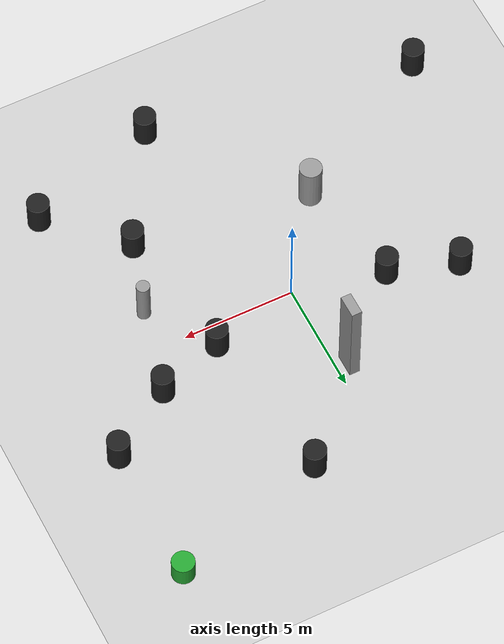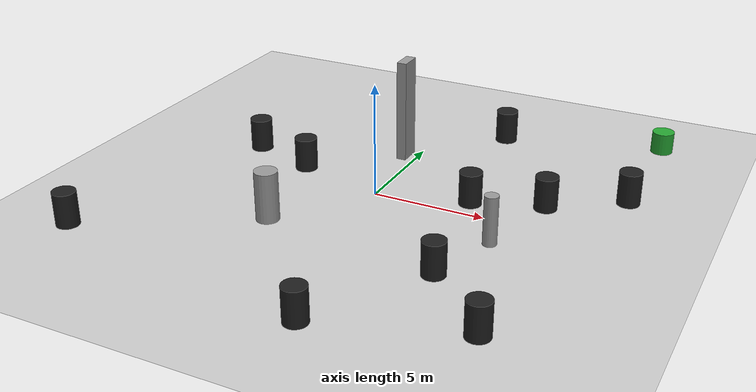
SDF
<sdf version="1.6">
 <world name="default">
  <light name="sun" type="directional">
   <pose>0 0 10 0 -0 0</pose>
   <diffuse>0.8 0.8 0.8 1</diffuse>
   <specular>0.2 0.2 0.2 1</specular>
   <attenuation>
    <range>1000</range>
    <constant>0.9</constant>
    <linear>0.01</linear>
    <quadratic>0.001</quadratic>
   </attenuation>
   <direction>-0.5 0.1 -0.9</direction>
  </light>
  <model name="ground_plane">
   <static>1</static>
   <link name="link">
    <collision name="collision">
     <geometry><plane><normal>0 0 1</normal><size>100 100</size></plane></geometry>
     <surface>
      <contact><collide_bitmask>65535</collide_bitmask></contact>
      <friction><ode><mu>100</mu><mu2>50</mu2></ode></friction>
     </surface>
    </collision>
    <visual name="visual">
     <cast_shadows>0</cast_shadows>
     <geometry><plane><normal>0 0 1</normal><size>100 100</size></plane></geometry>
     <material>
      <script><uri>file://media/materials/scripts/gazebo.material</uri><name>Gazebo/Grey</name></script>
     </material>
    </visual>
   </link>
  </model>
  <physics name="default_physics" default="0" type="ode">
   <max_step_size>0.01</max_step_size>
   <real_time_factor>1</real_time_factor>
   <real_time_update_rate>1000</real_time_update_rate>
  </physics>
  <model name="obs0">
   <pose>4 1 0.74912 0 -0 0</pose>
   <link name="link">
    <inertial>
     <mass>1</mass>
     <inertia><ixx>1</ixx><ixy>0</ixy><ixz>0</ixz><iyy>1</iyy><iyz>0</iyz><izz>1</izz></inertia>
    </inertial>
    <collision name="collision">
     <geometry><cylinder><radius>0.5</radius><length>1.5</length></cylinder></geometry>
    </collision>
    <visual name="visual">
     <geometry><cylinder><radius>0.5</radius><length>1.5</length></cylinder></geometry>
     <material>
      <script><uri>file://media/materials/scripts/gazebo.material</uri><name>Gazebo/Black</name></script>
     </material>
    </visual>
    <velocity_decay><linear>0</linear><angular>0</angular></velocity_decay>
   </link>
   <static>0</static>
  </model>
  <model name="obs1">
   <pose>-4 1 0.74912 0 -0 0</pose>
   <link name="link">
    <inertial>
     <mass>1</mass>
     <inertia><ixx>1</ixx><ixy>0</ixy><ixz>0</ixz><iyy>1</iyy><iyz>0</iyz><izz>1</izz></inertia>
    </inertial>
    <collision name="collision">
     <geometry><cylinder><radius>0.5</radius><length>1.5</length></cylinder></geometry>
    </collision>
    <visual name="visual">
     <geometry><cylinder><radius>0.5</radius><length>1.5</length></cylinder></geometry>
     <material>
      <script><uri>file://media/materials/scripts/gazebo.material</uri><name>Gazebo/Black</name></script>
     </material>
    </visual>
    <velocity_decay><linear>0</linear><angular>0</angular></velocity_decay>
   </link>
   <static>0</static>
  </model>
  <model name="obs2">
   <pose>-10 -8 0.74912 0 -0 0</pose>
   <link name="link">
    <inertial>
     <mass>1</mass>
     <inertia><ixx>1</ixx><ixy>0</ixy><ixz>0</ixz><iyy>1</iyy><iyz>0</iyz><izz>1</izz></inertia>
    </inertial>
    <collision name="collision">
     <geometry><cylinder><radius>0.5</radius><length>1.5</length></cylinder></geometry>
    </collision>
    <visual name="visual">
     <geometry><cylinder><radius>0.5</radius><length>1.5</length></cylinder></geometry>
     <material>
      <script><uri>file://media/materials/scripts/gazebo.material</uri><name>Gazebo/Black</name></script>
     </material>
    </visual>
    <velocity_decay><linear>0</linear><angular>0</angular></velocity_decay>
   </link>
   <static>0</static>
  </model>
  <model name="obs3">
   <pose>10 4 0.74912 0 -0 0</pose>
   <link name="link">
    <inertial>
     <mass>1</mass>
     <inertia><ixx>1</ixx><ixy>0</ixy><ixz>0</ixz><iyy>1</iyy><iyz>0</iyz><izz>1</izz></inertia>
    </inertial>
    <collision name="collision">
     <geometry><cylinder><radius>0.5</radius><length>1.5</length></cylinder></geometry>
    </collision>
    <visual name="visual">
     <geometry><cylinder><radius>0.5</radius><length>1.5</length></cylinder></geometry>
     <material>
      <script><uri>file://media/materials/scripts/gazebo.material</uri><name>Gazebo/Black</name></script>
     </material>
    </visual>
    <velocity_decay><linear>0</linear><angular>0</angular></velocity_decay>
   </link>
   <static>0</static>
  </model>
  <model name="obs4">
   <pose>7 2 0.74912 0 -0 0</pose>
   <link name="link">
    <inertial>
     <mass>1</mass>
     <inertia><ixx>1</ixx><ixy>0</ixy><ixz>0</ixz><iyy>1</iyy><iyz>0</iyz><izz>1</izz></inertia>
    </inertial>
    <collision name="collision">
     <geometry><cylinder><radius>0.5</radius><length>1.5</length></cylinder></geometry>
    </collision>
    <visual name="visual">
     <geometry><cylinder><radius>0.5</radius><length>1.5</length></cylinder></geometry>
     <material>
      <script><uri>file://media/materials/scripts/gazebo.material</uri><name>Gazebo/Black</name></script>
     </material>
    </visual>
    <velocity_decay><linear>0</linear><angular>0</angular></velocity_decay>
   </link>
   <static>0</static>
  </model>
  <model name="obs5">
   <pose>-7 2 0.74912 0 -0 0</pose>
   <link name="link">
    <inertial>
     <mass>1</mass>
     <inertia><ixx>1</ixx><ixy>0</ixy><ixz>0</ixz><iyy>1</iyy><iyz>0</iyz><izz>1</izz></inertia>
    </inertial>
    <collision name="collision">
     <geometry><cylinder><radius>0.5</radius><length>1.5</length></cylinder></geometry>
    </collision>
    <visual name="visual">
     <geometry><cylinder><radius>0.5</radius><length>1.5</length></cylinder></geometry>
     <material>
      <script><uri>file://media/materials/scripts/gazebo.material</uri><name>Gazebo/Black</name></script>
     </material>
    </visual>
    <velocity_decay><linear>0</linear><angular>0</angular></velocity_decay>
   </link>
   <static>0</static>
  </model>
  <model name="obs6">
   <pose>8 -8 0.74912 0 -0 0</pose>
   <link name="link">
    <inertial>
     <mass>1</mass>
     <inertia><ixx>1</ixx><ixy>0</ixy><ixz>0</ixz><iyy>1</iyy><iyz>0</iyz><izz>1</izz></inertia>
    </inertial>
    <collision name="collision">
     <geometry><cylinder><radius>0.5</radius><length>1.5</length></cylinder></geometry>
    </collision>
    <visual name="visual">
     <geometry><cylinder><radius>0.5</radius><length>1.5</length></cylinder></geometry>
     <material>
      <script><uri>file://media/materials/scripts/gazebo.material</uri><name>Gazebo/Black</name></script>
     </material>
    </visual>
    <velocity_decay><linear>0</linear><angular>0</angular></velocity_decay>
   </link>
   <static>0</static>
  </model>
  <model name="obs7">
   <pose>5 -5 0.74912 0 -0 0</pose>
   <link name="link">
    <inertial>
     <mass>1</mass>
     <inertia><ixx>1</ixx><ixy>0</ixy><ixz>0</ixz><iyy>1</iyy><iyz>0</iyz><izz>1</izz></inertia>
    </inertial>
    <collision name="collision">
     <geometry><cylinder><radius>0.5</radius><length>1.5</length></cylinder></geometry>
    </collision>
    <visual name="visual">
     <geometry><cylinder><radius>0.5</radius><length>1.5</length></cylinder></geometry>
     <material>
      <script><uri>file://media/materials/scripts/gazebo.material</uri><name>Gazebo/Black</name></script>
     </material>
    </visual>
    <velocity_decay><linear>0</linear><angular>0</angular></velocity_decay>
   </link>
   <static>0</static>
  </model>
  <model name="obs8">
   <pose>2 -10 0.74912 0 -0 0</pose>
   <link name="link">
    <inertial>
     <mass>1</mass>
     <inertia><ixx>1</ixx><ixy>0</ixy><ixz>0</ixz><iyy>1</iyy><iyz>0</iyz><izz>1</izz></inertia>
    </inertial>
    <collision name="collision">
     <geometry><cylinder><radius>0.5</radius><length>1.5</length></cylinder></geometry>
    </collision>
    <visual name="visual">
     <geometry><cylinder><radius>0.5</radius><length>1.5</length></cylinder></geometry>
     <material>
      <script><uri>file://media/materials/scripts/gazebo.material</uri><name>Gazebo/Black</name></script>
     </material>
    </visual>
    <velocity_decay><linear>0</linear><angular>0</angular></velocity_decay>
   </link>
   <static>0</static>
  </model>
  <model name="obs9">
   <pose>3 8 0.74912 0 -0 0</pose>
   <link name="link">
    <inertial>
     <mass>1</mass>
     <inertia><ixx>1</ixx><ixy>0</ixy><ixz>0</ixz><iyy>1</iyy><iyz>0</iyz><izz>1</izz></inertia>
    </inertial>
    <collision name="collision">
     <geometry><cylinder><radius>0.5</radius><length>1.5</length></cylinder></geometry>
    </collision>
    <visual name="visual">
     <geometry><cylinder><radius>0.5</radius><length>1.5</length></cylinder></geometry>
     <material>
      <script><uri>file://media/materials/scripts/gazebo.material</uri><name>Gazebo/Black</name></script>
     </material>
    </visual>
    <velocity_decay><linear>0</linear><angular>0</angular></velocity_decay>
   </link>
   <static>0</static>
  </model>
  <model name="agent_point_goal">
   <pose>10 10 0.5 0 -0 0</pose>
   <link name="link">
    <inertial>
     <mass>1</mass>
     <inertia><ixx>1</ixx><ixy>0</ixy><ixz>0</ixz><iyy>1</iyy><iyz>0</iyz><izz>1</izz></inertia>
    </inertial>
    <visual name="visual">
     <geometry><cylinder><radius>0.5</radius><length>1</length></cylinder></geometry>
     <material>
      <script><uri>file://media/materials/scripts/gazebo.material</uri><name>Gazebo/Green</name></script>
     </material>
    </visual>
    <velocity_decay><linear>0</linear><angular>0</angular></velocity_decay>
    <gravity>0</gravity>
   </link>
  </model>
  <gravity>0 0 -9.8</gravity>
  <magnetic_field>6e-06 2.3e-05 -4.2e-05</magnetic_field>
  <atmosphere type="adiabatic"/>
  <scene><ambient>0.4 0.4 0.4 1</ambient><background>0.7 0.7 0.7 1</background><shadows>1</shadows></scene>
  <spherical_coordinates>
   <surface_model>EARTH_WGS84</surface_model>
   <latitude_deg>0</latitude_deg>
   <longitude_deg>0</longitude_deg>
   <elevation>0</elevation>
   <heading_deg>0</heading_deg>
  </spherical_coordinates>
  <model name="unit_cylinder">
   <pose>-2.93288 -3.98138 1.09654 3e-06 -0 -5.3e-05</pose>
   <link name="link">
    <inertial>
     <mass>1</mass>
     <inertia><ixx>0.145833</ixx><ixy>0</ixy><ixz>0</ixz><iyy>0.145833</iyy><iyz>0</iyz><izz>0.125</izz></inertia>
    </inertial>
    <collision name="collision">
     <geometry><cylinder><radius>0.5</radius><length>2.19483</length></cylinder></geometry>
    </collision>
    <visual name="visual">
     <geometry><cylinder><radius>0.5</radius><length>2.19483</length></cylinder></geometry>
     <material>
      <script><name>Gazebo/Grey</name><uri>file://media/materials/scripts/gazebo.material</uri></script>
     </material>
    </visual>
   </link>
  </model>
  <model name="unit_cylinder_0">
   <pose>6.0119 -1.8718 1.07636 0 -0 5.7e-05</pose>
   <link name="link">
    <inertial>
     <mass>1</mass>
     <inertia><ixx>0.145833</ixx><ixy>0</ixy><ixz>0</ixz><iyy>0.145833</iyy><iyz>0</iyz><izz>0.125</izz></inertia>
    </inertial>
    <collision name="collision">
     <geometry><cylinder><radius>0.297841</radius><length>2.15448</length></cylinder></geometry>
    </collision>
    <visual name="visual">
     <geometry><cylinder><radius>0.297841</radius><length>2.15448</length></cylinder></geometry>
     <material>
      <script><name>Gazebo/Grey</name><uri>file://media/materials/scripts/gazebo.material</uri></script>
     </material>
    </visual>
   </link>
  </model>
  <model name="unit_box">
   <pose>-0.563381 4.2129 2.33921 3.6e-05 -1.1e-05 0.002833</pose>
   <link name="link">
    <inertial>
     <mass>1</mass>
     <inertia>
      <ixx>0.166667</ixx>
      <ixy>0</ixy>
      <ixz>0</ixz>
      <iyy>0.166667</iyy>
      <iyz>0</iyz>
      <izz>0.166667</izz>
     </inertia>
    </inertial>
    <collision name="collision"><geometry><box><size>0.455505 1 4.67837</size></box></geometry></collision>
    <visual name="visual">
     <geometry><box><size>0.455505 1 4.67837</size></box></geometry>
     <material>
      <script><name>Gazebo/Grey</name><uri>file://media/materials/scripts/gazebo.material</uri></script>
     </material>
    </visual>
   </link>
  </model>
 </world>
</sdf>
